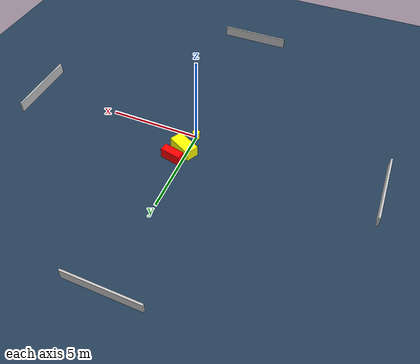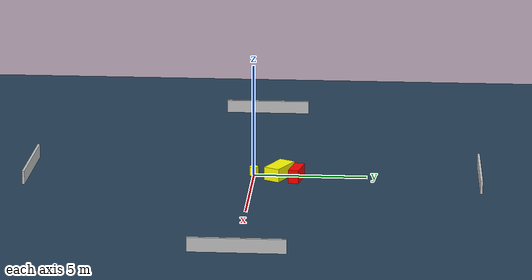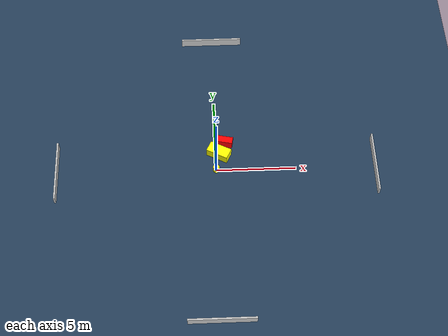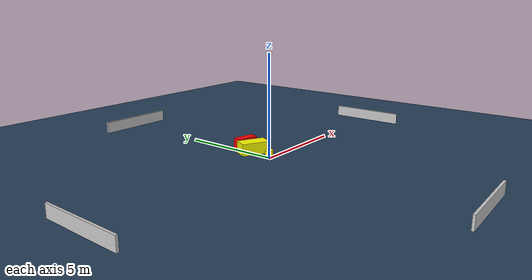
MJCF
<?xml version="1.0" ?>
<mujoco model="generated_environment">
  <option timestep="0.01" integrator="RK4" cone="elliptic"/>
  <default>
    <geom density="1"/>
  </default>
  <asset>
    <texture builtin="gradient" height="3072" name="skybox" rgb1="0.3 0.5 0.7" rgb2="0 0 0" type="skybox" width="512"/>
    <texture builtin="checker" height="300" name="groundplane" rgb1="0.2 0.3 0.4" rgb2="0.1 0.2 0.3" type="2d" width="300"/>
    <material name="groundplane" reflectance="0.2" texrepeat="5 5" texture="groundplane"/>
  </asset>
  <worldbody>
    <light dir="0 0 -1" directional="true" pos="0 0 1.5"/>
    <geom condim="3" friction="0.5 0.005 0.001" material="groundplane" name="floor" pos="0 0 0" size="0 0 0.05" type="plane"/>
    <body name="walls">
      <geom name="wall_1" condim="4" pos="-10.0 0.0 0.3" rgba="0.800000011920929 0.800000011920929 0.800000011920929 1.0" size="0.05 2.0 0.3" type="box"/>
      <geom name="wall_2" condim="4" pos="10.0 0.0 0.3" rgba="0.800000011920929 0.800000011920929 0.800000011920929 1.0" size="0.05 2.0 0.3" type="box"/>
      <geom name="wall_3" condim="4" pos="0.0 -10.0 0.3" rgba="0.800000011920929 0.800000011920929 0.800000011920929 1.0" size="2.0 0.05 0.3" type="box"/>
      <geom name="wall_4" condim="4" pos="0.0 10.0 0.3" rgba="0.800000011920929 0.800000011920929 0.800000011920929 1.0" size="2.0 0.05 0.3" type="box"/>
    </body>
    <body name="robot">
      <joint name="joint_x" type="slide" pos="0 0 0" axis="1 0 0"/>
      <joint name="joint_y" type="slide" pos="0 0 0" axis="0 1 0"/>
      <geom name="robot" type="cylinder" pos="0.0 0.0 0.2" size="0.2 0.2 0.0" mass="5.0" friction="1.0 0.005 0.0001" condim="4" rgba="1.0 1.0 0.0 1.0"/>
    </body>
    <body name="obstacle_1_movable">
      <geom name="obstacle_1_movable" condim="4" pos="0.2023660046260615 1.1516666236730528 0.3" euler="0 0 242.85292929359997" friction="0.0 0.005 0.001" rgba="1.0 1.0 0.0 1.0" size="0.36163619576436384 0.7045523481365719 0.3" type="box" mass="0.1"/>
      <joint type="free"/>
    </body>
    <body name="obstacle_2_static">
      <geom name="obstacle_2_static" condim="4" pos="0.5350331089706606 1.9244893937758516 0.3" euler="0 0 78.01756550516254" friction="0.0 0.005 0.001" rgba="1.0 0.0 0.0 1.0" size="0.227376065775928 0.5606240143560624 0.3" type="box"/>
    </body>
  </worldbody>
  <actuator>
    <motor name="actuator_x" joint="joint_x" gear="1" ctrlrange="-1 1"/>
    <motor name="actuator_y" joint="joint_y" gear="1" ctrlrange="-1 1"/>
  </actuator>
</mujoco>
